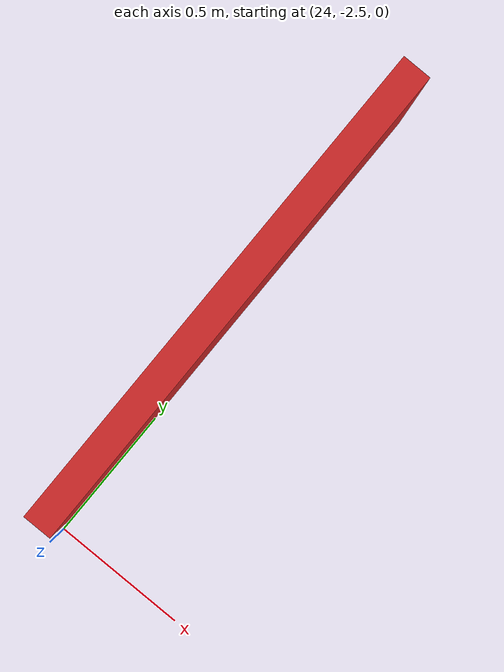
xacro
<?xml version="1.0"?>
<robot name="simple_box2">
<link name="world"/>
  <link name="my_box2">
    <inertial>
      <origin xyz="24 -1.4 0.5" />
      <mass value="1.0" />
      <inertia  ixx="1.0" ixy="0.0"  ixz="0.0"  iyy="100.0"  iyz="0.0"  izz="1.0" />
    </inertial>
    <visual>
      <origin xyz="24 -1.4 0.5"/>
      <geometry>
        <box size="0.1 1.75 1" />
      </geometry>
    </visual>
    <collision>
      <origin xyz="24 -1.4 0.5"/>
      <geometry>
        <box size="0.1 1.75 1" />
      </geometry>
    </collision>
  </link>
  <gazebo reference="my_box2">
    <material>Gazebo/Red</material>
  </gazebo>
    <joint name="joint_my_box" type="fixed">
    <origin rpy="0 0 0" xyz="-0.05 -0.15 0"/>
    <child link="my_box2"/>
    <parent link="world"/>
  </joint>
</robot>
